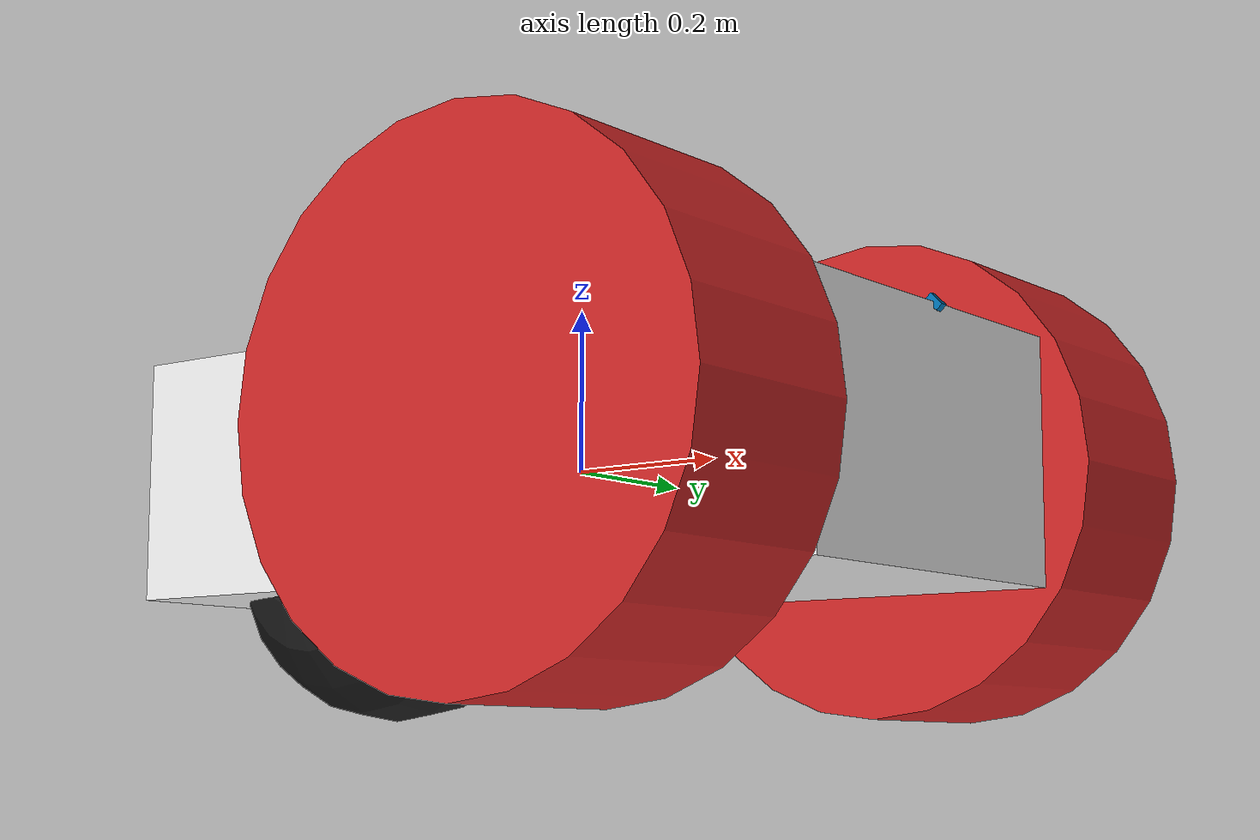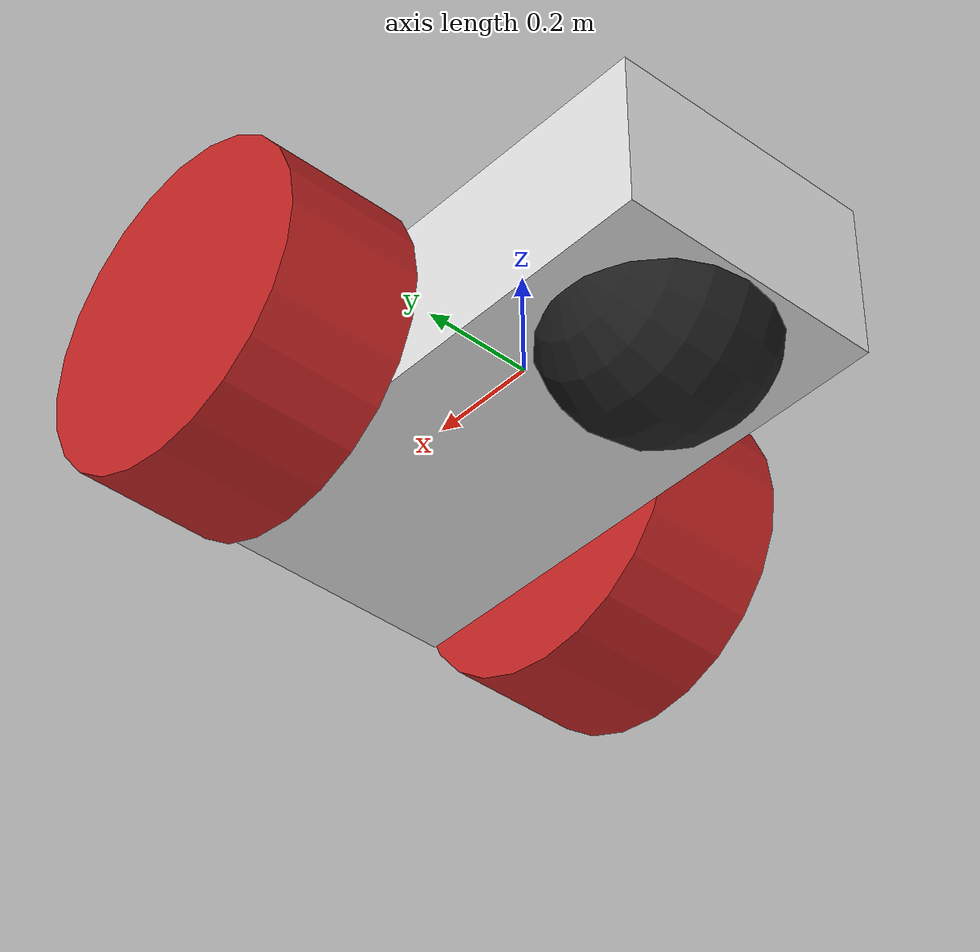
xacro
<?xml version="1.0"?>
<robot xmlns:xacro="http://www.ros.org/wiki/xacro" name="simple_rover">
  <xacro:property name="wheel_separation" value="0.070" />
  <xacro:property name="wheel_radius" value="0.3" />
  <xacro:property name="caster_wheel_radius" value="0.2" />
  <xacro:property name="wheel_width" value="0.25" />
  <xacro:property name="body_height" value="0.3" />
  <xacro:property name="body_width" value="0.5" />
  <xacro:property name="body_length" value="1.0" />

  <xacro:include filename="$(find simple_rover)/urdf/camera.gazebo.xacro" />

  <gazebo reference="base_link">
    <material>Gazebo/Wㄹhite</material>
    <mu1>0.2</mu1>
    <mu2>0.2</mu2>
  </gazebo>

  <gazebo reference="right_wheel">
    <material>Gazebo/Red</material>
    <mu1>1.84</mu1>
    <mu2>1.84</mu2>
  </gazebo>

  <gazebo reference="left_wheel">
    <material>Gazebo/Red</material>
    <mu1>1.84</mu1>
    <mu2>1.84</mu2>
  </gazebo>

  <gazebo reference="caster_wheel">
    <material>Gazebo/Black</material>
    <mu1>0.84</mu1>
    <mu2>0.84</mu2>
  </gazebo>

  <link name="base_link">
    <visual>
      <geometry>
        <box size="${body_length} ${body_width} ${body_height}"/>
      </geometry>
    </visual>

    <collision>
      <geometry>
        <box size="${body_length} ${body_width} ${body_height}"/>
      </geometry>
    </collision>

    <inertial>
      <mass value="1"/>
      <inertia ixx="0.166667" ixy="0" ixz="0" iyy="0.166667" iyz="0" izz="0.166667"/>
    </inertial>
  </link>

  <link name="left_wheel">
    <visual>
      <geometry>
        <cylinder length="${wheel_width}" radius="${wheel_radius}"/>
      </geometry>
    </visual>

    <collision>
      <geometry>
        <cylinder length="${wheel_width}" radius="${wheel_radius}"/>
      </geometry>
    </collision>

    <inertial>
      <mass value="1"/>
      <inertia ixx="0.145833" ixy="0.0" ixz="0.0" iyy="0.145833" iyz="0.0" izz="0.125"/>
    </inertial>
  </link>

  <link name="right_wheel">
    <visual>
      <geometry>
        <cylinder length="${wheel_width}" radius="${wheel_radius}"/>
      </geometry>
    </visual>

    <collision>
      <geometry>
        <cylinder length="${wheel_width}" radius="${wheel_radius}"/>
      </geometry>
    </collision>

    <inertial>
      <mass value="1"/>
      <inertia ixx="0.145833" ixy="0.0" ixz="0.0" iyy="0.145833" iyz="0.0" izz="0.125"/>
    </inertial>
  </link>

  <link name="caster_wheel">
    <visual>
      <geometry>
        <sphere radius="${caster_wheel_radius}"/>
      </geometry>
    </visual>

    <collision>
      <geometry>
        <sphere radius="${caster_wheel_radius}"/>
      </geometry>
    </collision>

    <inertial>
      <mass value="1"/>
      <inertia ixx="0.1" ixy="0.0" ixz="0.0" iyy="0.1" iyz="0.0" izz="0.1"/>
    </inertial>
  </link>

  <xacro:normal_camera parent_name="base_link" sensor_name="camera" robot_name="simple_rover">
    <origin xyz="${body_length/2} 0 ${body_height/2}" rpy="0 ${pi/4} 0" />
  </xacro:normal_camera>

  <joint name="joint_left" type="continuous">
    <parent link="base_link"/>
    <child link="left_wheel"/>
    <axis xyz="0 0 1"/>
    <origin xyz="${body_width/2} ${body_width/2 + wheel_width/2 + 0.02} 0" rpy="-${pi/2} 0 0" />
    <dynamics friction="0.1"/>
  </joint>

  <joint name="joint_right" type="continuous">
    <parent link="base_link"/>
    <child link="right_wheel"/>
    <axis xyz="0 0 1"/>
    <origin xyz="${body_width/2} -${body_width/2 + wheel_width/2 + 0.02} 0" rpy="-${pi/2} 0 0" />
    <dynamics friction="0.1"/>
  </joint>

  <joint name="joint_caster_wheel" type="continuous">
    <parent link="base_link"/>
    <child link="caster_wheel"/>
    <axis xyz="0 0 1"/>
    <origin xyz="-${body_width-caster_wheel_radius} 0 -${caster_wheel_radius/2}" rpy="${pi/2} 0 0" />
    <dynamics friction="0.1"/>
  </joint>

  <gazebo>
    <plugin name="simple_rover_diff_drive" filename="libgazebo_ros_diff_drive.so">
      <update_rate>30</update_rate>

      <!-- wheels -->
      <left_joint>joint_left</left_joint>
      <right_joint>joint_right</right_joint>

      <!-- kinematics -->
      <wheel_separation>0.5</wheel_separation>
      <wheel_diameter>0.3</wheel_diameter>

      <!-- limits -->
      <max_wheel_torque>20</max_wheel_torque>
      <max_wheel_acceleration>1.0</max_wheel_acceleration>

      <!-- Receive velocity commands on this ROS topic -->
      <command_topic>cmd_vel</command_topic>
    </plugin>
  </gazebo>

</robot>

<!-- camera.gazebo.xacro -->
<robot name="nanosaur_sensor_camera" xmlns:xacro="http://ros.org/wiki/xacro">

    <!-- Sensors -->
    <xacro:property name="sensor_mass" value="0.01"/>
    <xacro:property name="camera_box_x" value="0.02"/>
    <xacro:property name="camera_box_y" value="0.01"/>
    <xacro:property name="camera_box_z" value="0.01"/>

  <xacro:macro name="normal_camera" params="parent_name sensor_name robot_name *camera_pose">

    <link name='${sensor_name}_camera_link'>
		<visual>
			<origin xyz="0 0 0"
					rpy="0 0 0"/>
			<geometry>
				<box size="${camera_box_x} ${camera_box_y} ${camera_box_z}"/>
			</geometry>
		</visual>
	</link>

    <joint name="${sensor_name}_camera_link_joint" type="fixed">
        <xacro:insert_block name="camera_pose"/>
		<parent link="${parent_name}"/>
		<child link="${sensor_name}_camera_link"/>
	</joint>

    <link name="${sensor_name}_camera_link_frame">
    </link>

    <joint name="${sensor_name}_camera_frame_joint" type="fixed">
        <origin xyz="${camera_box_x} 0 0" rpy="0 0 0" />
        <parent link="${sensor_name}_camera_link" />
        <child link="${sensor_name}_camera_link_frame" />
        <axis xyz="0 0 0"/>
    </joint>

    <gazebo reference="${sensor_name}_camera_link_frame">
        <sensor type="camera" name="${sensor_name}">
        <visualize>true</visualize>
        <update_rate>10.0</update_rate>
        <camera name="${sensor_name}_SP">

            <pose>0 0 0 0 0 0</pose>

            <horizontal_fov>1.3962634</horizontal_fov>
            <image>
            <width>640</width>
            <height>480</height>
            <format>R8G8B8</format>
            </image>
            <clip>
                <near>0.005</near>
                <far>20.0</far>
            </clip>
        </camera>
        <plugin name="camera_controller" filename="libgazebo_ros_camera.so">
            <ros>
                <namespace>/${robot_name}</namespace>
            </ros>
            <alwaysOn>true</alwaysOn>
            <updateRate>0.0</updateRate>
            <cameraName>${sensor_name}</cameraName>
            <imageTopicName>image_raw</imageTopicName>
            <cameraInfoTopicName>camera_info</cameraInfoTopicName>
            <frameName>${sensor_name}_camera_link_frame</frameName>
            <hackBaseline>0.07</hackBaseline>
            <distortionK1>0.0</distortionK1>
            <distortionK2>0.0</distortionK2>
            <distortionK3>0.0</distortionK3>
            <distortionT1>0.0</distortionT1>
            <distortionT2>0.0</distortionT2>
        </plugin>
        </sensor>
    </gazebo>

  </xacro:macro>

</robot>
